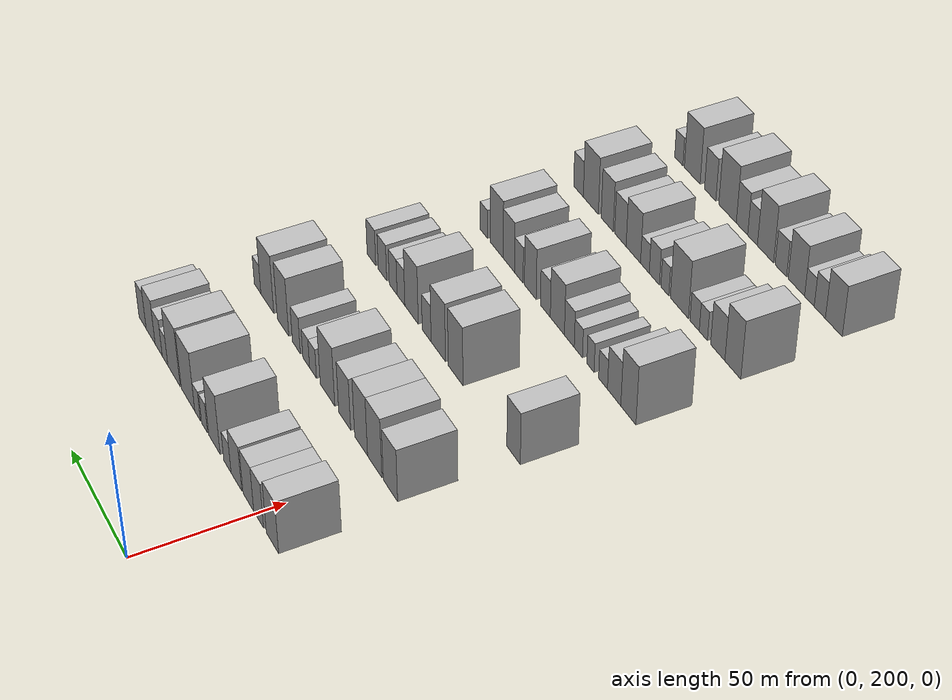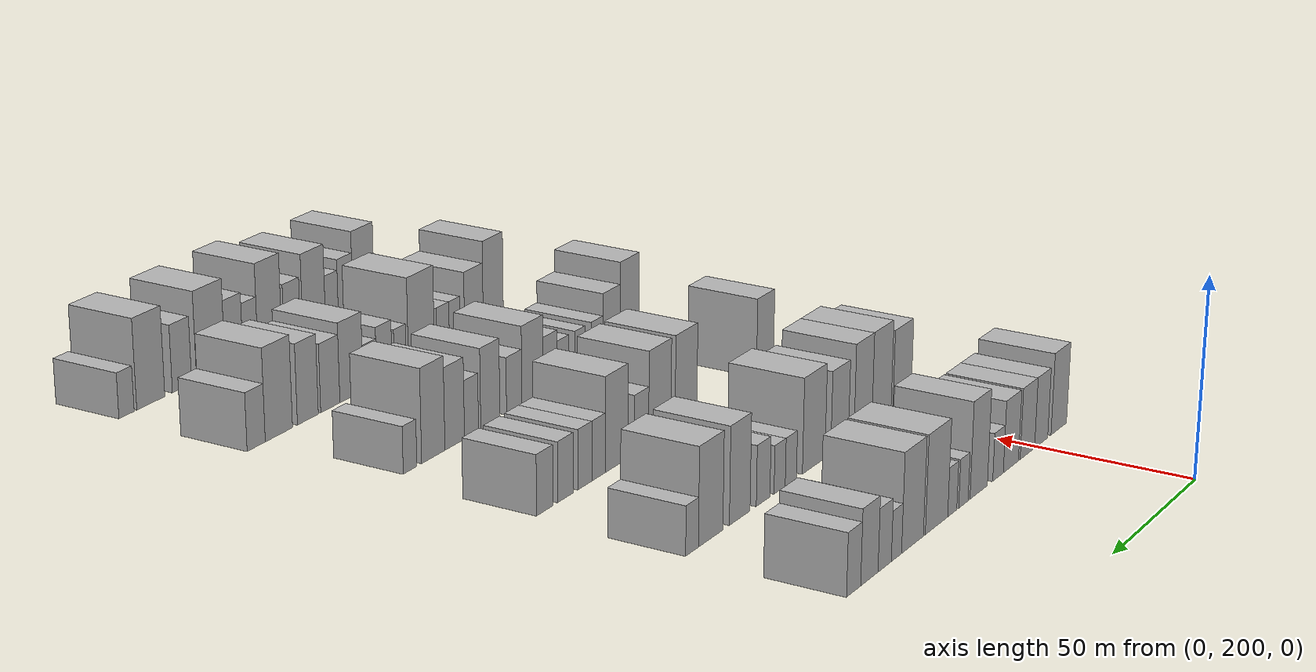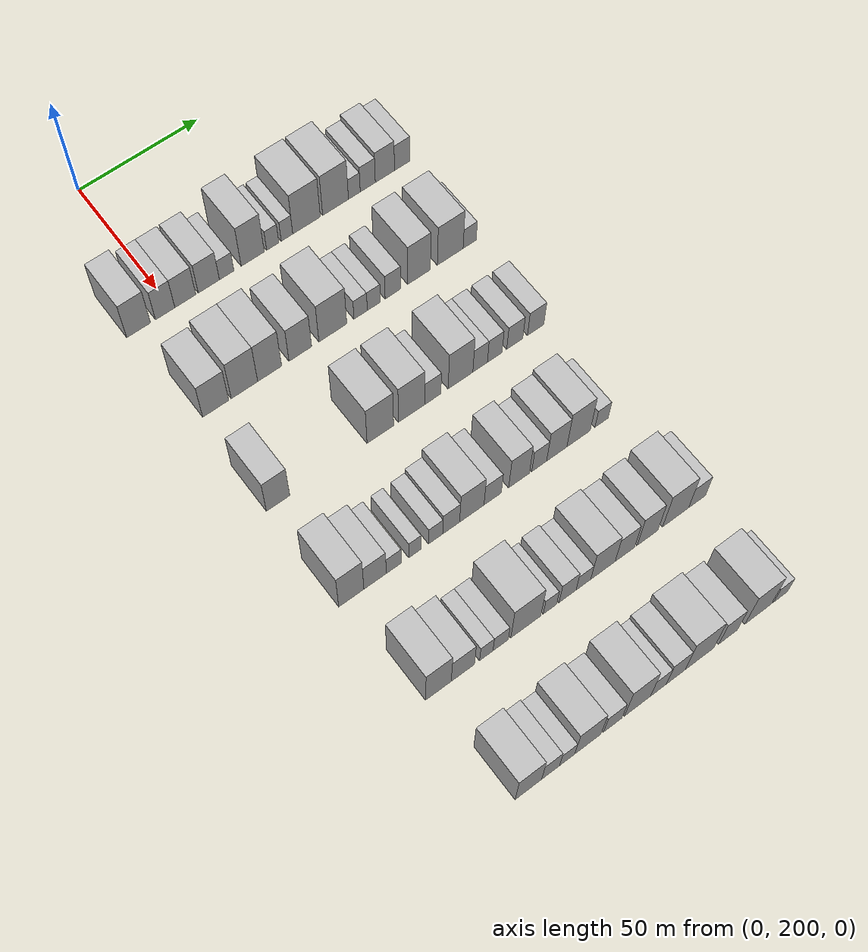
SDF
<sdf version="1.6">
 <world name="default">
  <model name="building_92">
   <static>1</static>
   <pose>50.0000 186.4807 0 0.000000 0.000000 0.000000</pose>
   <link name="link">
    <pose>0 0 10.50 0 0 0</pose>
    <collision name="collision"><geometry><box><size>20.0000 9.4979 21.0000</size></box></geometry></collision>
    <visual name="visual">
     <cast_shadows>0</cast_shadows>
     <geometry><box><size>20.0000 9.4979 21.0000</size></box></geometry>
     <material>
      <script>
       <uri>model://HANNAS_wall/materials/scripts</uri>
       <uri>model://HANNAS_wall/materials/textures</uri>
       <name>vrc/HANNAS_wall</name>
      </script>
     </material>
    </visual>
   </link>
  </model>
  <model name="building_93">
   <static>1</static>
   <pose>50.0000 197.1369 0 0.000000 0.000000 0.000000</pose>
   <link name="link">
    <pose>0 0 9.00 0 0 0</pose>
    <collision name="collision"><geometry><box><size>20.0000 7.8145 18.0000</size></box></geometry></collision>
    <visual name="visual">
     <cast_shadows>0</cast_shadows>
     <geometry><box><size>20.0000 7.8145 18.0000</size></box></geometry>
     <material>
      <script>
       <uri>model://HANNAS_wall/materials/scripts</uri>
       <uri>model://HANNAS_wall/materials/textures</uri>
       <name>vrc/HANNAS_wall</name>
      </script>
     </material>
    </visual>
   </link>
  </model>
  <model name="building_94">
   <static>1</static>
   <pose>50.0000 205.2995 0 0.000000 0.000000 0.000000</pose>
   <link name="link">
    <pose>0 0 9.00 0 0 0</pose>
    <collision name="collision"><geometry><box><size>20.0000 8.5106 18.0000</size></box></geometry></collision>
    <visual name="visual">
     <cast_shadows>0</cast_shadows>
     <geometry><box><size>20.0000 8.5106 18.0000</size></box></geometry>
     <material>
      <script>
       <uri>model://HANNAS_wall/materials/scripts</uri>
       <uri>model://HANNAS_wall/materials/textures</uri>
       <name>vrc/HANNAS_wall</name>
      </script>
     </material>
    </visual>
   </link>
  </model>
  <model name="building_95">
   <static>1</static>
   <pose>50.0000 214.9001 0 0.000000 0.000000 0.000000</pose>
   <link name="link">
    <pose>0 0 9.00 0 0 0</pose>
    <collision name="collision"><geometry><box><size>20.0000 8.6907 18.0000</size></box></geometry></collision>
    <visual name="visual">
     <cast_shadows>0</cast_shadows>
     <geometry><box><size>20.0000 8.6907 18.0000</size></box></geometry>
     <material>
      <script>
       <uri>model://HANNAS_wall/materials/scripts</uri>
       <uri>model://HANNAS_wall/materials/textures</uri>
       <name>vrc/HANNAS_wall</name>
      </script>
     </material>
    </visual>
   </link>
  </model>
  <model name="building_96">
   <static>1</static>
   <pose>50.0000 222.2431 0 0.000000 0.000000 0.000000</pose>
   <link name="link">
    <pose>0 0 6.00 0 0 0</pose>
    <collision name="collision"><geometry><box><size>20.0000 5.9953 12.0000</size></box></geometry></collision>
    <visual name="visual">
     <cast_shadows>0</cast_shadows>
     <geometry><box><size>20.0000 5.9953 12.0000</size></box></geometry>
     <material>
      <script>
       <uri>model://HANNAS_wall/materials/scripts</uri>
       <uri>model://HANNAS_wall/materials/textures</uri>
       <name>vrc/HANNAS_wall</name>
      </script>
     </material>
    </visual>
   </link>
  </model>
  <model name="building_97">
   <static>1</static>
   <pose>50.0000 233.0415 0 0.000000 0.000000 0.000000</pose>
   <link name="link">
    <pose>0 0 12.00 0 0 0</pose>
    <collision name="collision"><geometry><box><size>20.0000 9.6014 24.0000</size></box></geometry></collision>
    <visual name="visual">
     <cast_shadows>0</cast_shadows>
     <geometry><box><size>20.0000 9.6014 24.0000</size></box></geometry>
     <material>
      <script>
       <uri>model://HANNAS_wall/materials/scripts</uri>
       <uri>model://HANNAS_wall/materials/textures</uri>
       <name>vrc/HANNAS_wall</name>
      </script>
     </material>
    </visual>
   </link>
  </model>
  <model name="building_98">
   <static>1</static>
   <pose>50.0000 241.4046 0 0.000000 0.000000 0.000000</pose>
   <link name="link">
    <pose>0 0 6.00 0 0 0</pose>
    <collision name="collision"><geometry><box><size>20.0000 5.1250 12.0000</size></box></geometry></collision>
    <visual name="visual">
     <cast_shadows>0</cast_shadows>
     <geometry><box><size>20.0000 5.1250 12.0000</size></box></geometry>
     <material>
      <script>
       <uri>model://HANNAS_wall/materials/scripts</uri>
       <uri>model://HANNAS_wall/materials/textures</uri>
       <name>vrc/HANNAS_wall</name>
      </script>
     </material>
    </visual>
   </link>
  </model>
  <model name="building_99">
   <static>1</static>
   <pose>50.0000 247.4017 0 0.000000 0.000000 0.000000</pose>
   <link name="link">
    <pose>0 0 6.00 0 0 0</pose>
    <collision name="collision"><geometry><box><size>20.0000 4.8691 12.0000</size></box></geometry></collision>
    <visual name="visual">
     <cast_shadows>0</cast_shadows>
     <geometry><box><size>20.0000 4.8691 12.0000</size></box></geometry>
     <material>
      <script>
       <uri>model://HANNAS_wall/materials/scripts</uri>
       <uri>model://HANNAS_wall/materials/textures</uri>
       <name>vrc/HANNAS_wall</name>
      </script>
     </material>
    </visual>
   </link>
  </model>
  <model name="building_100">
   <static>1</static>
   <pose>50.0000 255.6946 0 0.000000 0.000000 0.000000</pose>
   <link name="link">
    <pose>0 0 12.00 0 0 0</pose>
    <collision name="collision"><geometry><box><size>20.0000 11.7168 24.0000</size></box></geometry></collision>
    <visual name="visual">
     <cast_shadows>0</cast_shadows>
     <geometry><box><size>20.0000 11.7168 24.0000</size></box></geometry>
     <material>
      <script>
       <uri>model://HANNAS_wall/materials/scripts</uri>
       <uri>model://HANNAS_wall/materials/textures</uri>
       <name>vrc/HANNAS_wall</name>
      </script>
     </material>
    </visual>
   </link>
  </model>
  <model name="building_101">
   <static>1</static>
   <pose>50.0000 268.1059 0 0.000000 0.000000 0.000000</pose>
   <link name="link">
    <pose>0 0 12.00 0 0 0</pose>
    <collision name="collision"><geometry><box><size>20.0000 11.1059 24.0000</size></box></geometry></collision>
    <visual name="visual">
     <cast_shadows>0</cast_shadows>
     <geometry><box><size>20.0000 11.1059 24.0000</size></box></geometry>
     <material>
      <script>
       <uri>model://HANNAS_wall/materials/scripts</uri>
       <uri>model://HANNAS_wall/materials/textures</uri>
       <name>vrc/HANNAS_wall</name>
      </script>
     </material>
    </visual>
   </link>
  </model>
  <model name="building_102">
   <static>1</static>
   <pose>50.0000 276.2092 0 0.000000 0.000000 0.000000</pose>
   <link name="link">
    <pose>0 0 6.00 0 0 0</pose>
    <collision name="collision"><geometry><box><size>20.0000 5.1007 12.0000</size></box></geometry></collision>
    <visual name="visual">
     <cast_shadows>0</cast_shadows>
     <geometry><box><size>20.0000 5.1007 12.0000</size></box></geometry>
     <material>
      <script>
       <uri>model://HANNAS_wall/materials/scripts</uri>
       <uri>model://HANNAS_wall/materials/textures</uri>
       <name>vrc/HANNAS_wall</name>
      </script>
     </material>
    </visual>
   </link>
  </model>
  <model name="building_103">
   <static>1</static>
   <pose>50.0000 282.0376 0 0.000000 0.000000 0.000000</pose>
   <link name="link">
    <pose>0 0 7.50 0 0 0</pose>
    <collision name="collision"><geometry><box><size>20.0000 6.5561 15.0000</size></box></geometry></collision>
    <visual name="visual">
     <cast_shadows>0</cast_shadows>
     <geometry><box><size>20.0000 6.5561 15.0000</size></box></geometry>
     <material>
      <script>
       <uri>model://HANNAS_wall/materials/scripts</uri>
       <uri>model://HANNAS_wall/materials/textures</uri>
       <name>vrc/HANNAS_wall</name>
      </script>
     </material>
    </visual>
   </link>
  </model>
  <model name="building_104">
   <static>1</static>
   <pose>50.0000 289.5081 0 0.000000 0.000000 0.000000</pose>
   <link name="link">
    <pose>0 0 9.00 0 0 0</pose>
    <collision name="collision"><geometry><box><size>20.0000 8.3850 18.0000</size></box></geometry></collision>
    <visual name="visual">
     <cast_shadows>0</cast_shadows>
     <geometry><box><size>20.0000 8.3850 18.0000</size></box></geometry>
     <material>
      <script>
       <uri>model://HANNAS_wall/materials/scripts</uri>
       <uri>model://HANNAS_wall/materials/textures</uri>
       <name>vrc/HANNAS_wall</name>
      </script>
     </material>
    </visual>
   </link>
  </model>
  <model name="building_105">
   <static>1</static>
   <pose>50.0000 297.0561 0 0.000000 0.000000 0.000000</pose>
   <link name="link">
    <pose>0 0 7.50 0 0 0</pose>
    <collision name="collision"><geometry><box><size>20.0000 6.7108 15.0000</size></box></geometry></collision>
    <visual name="visual">
     <cast_shadows>0</cast_shadows>
     <geometry><box><size>20.0000 6.7108 15.0000</size></box></geometry>
     <material>
      <script>
       <uri>model://HANNAS_wall/materials/scripts</uri>
       <uri>model://HANNAS_wall/materials/textures</uri>
       <name>vrc/HANNAS_wall</name>
      </script>
     </material>
    </visual>
   </link>
  </model>
  <model name="building_231">
   <static>1</static>
   <pose>90.0000 190.8780 0 0.000000 0.000000 0.000000</pose>
   <link name="link">
    <pose>0 0 10.50 0 0 0</pose>
    <collision name="collision"><geometry><box><size>20.0000 10.3225 21.0000</size></box></geometry></collision>
    <visual name="visual">
     <cast_shadows>0</cast_shadows>
     <geometry><box><size>20.0000 10.3225 21.0000</size></box></geometry>
     <material>
      <script>
       <uri>model://HANNAS_wall/materials/scripts</uri>
       <uri>model://HANNAS_wall/materials/textures</uri>
       <name>vrc/HANNAS_wall</name>
      </script>
     </material>
    </visual>
   </link>
  </model>
  <model name="building_232">
   <static>1</static>
   <pose>90.0000 202.3328 0 0.000000 0.000000 0.000000</pose>
   <link name="link">
    <pose>0 0 12.00 0 0 0</pose>
    <collision name="collision"><geometry><box><size>20.0000 10.5871 24.0000</size></box></geometry></collision>
    <visual name="visual">
     <cast_shadows>0</cast_shadows>
     <geometry><box><size>20.0000 10.5871 24.0000</size></box></geometry>
     <material>
      <script>
       <uri>model://HANNAS_wall/materials/scripts</uri>
       <uri>model://HANNAS_wall/materials/textures</uri>
       <name>vrc/HANNAS_wall</name>
      </script>
     </material>
    </visual>
   </link>
  </model>
  <model name="building_233">
   <static>1</static>
   <pose>90.0000 212.4671 0 0.000000 0.000000 0.000000</pose>
   <link name="link">
    <pose>0 0 12.00 0 0 0</pose>
    <collision name="collision"><geometry><box><size>20.0000 9.6815 24.0000</size></box></geometry></collision>
    <visual name="visual">
     <cast_shadows>0</cast_shadows>
     <geometry><box><size>20.0000 9.6815 24.0000</size></box></geometry>
     <material>
      <script>
       <uri>model://HANNAS_wall/materials/scripts</uri>
       <uri>model://HANNAS_wall/materials/textures</uri>
       <name>vrc/HANNAS_wall</name>
      </script>
     </material>
    </visual>
   </link>
  </model>
  <model name="building_234">
   <static>1</static>
   <pose>90.0000 224.9307 0 0.000000 0.000000 0.000000</pose>
   <link name="link">
    <pose>0 0 10.50 0 0 0</pose>
    <collision name="collision"><geometry><box><size>20.0000 9.2458 21.0000</size></box></geometry></collision>
    <visual name="visual">
     <cast_shadows>0</cast_shadows>
     <geometry><box><size>20.0000 9.2458 21.0000</size></box></geometry>
     <material>
      <script>
       <uri>model://HANNAS_wall/materials/scripts</uri>
       <uri>model://HANNAS_wall/materials/textures</uri>
       <name>vrc/HANNAS_wall</name>
      </script>
     </material>
    </visual>
   </link>
  </model>
  <model name="building_235">
   <static>1</static>
   <pose>90.0000 238.3141 0 0.000000 0.000000 0.000000</pose>
   <link name="link">
    <pose>0 0 12.00 0 0 0</pose>
    <collision name="collision"><geometry><box><size>20.0000 11.5210 24.0000</size></box></geometry></collision>
    <visual name="visual">
     <cast_shadows>0</cast_shadows>
     <geometry><box><size>20.0000 11.5210 24.0000</size></box></geometry>
     <material>
      <script>
       <uri>model://HANNAS_wall/materials/scripts</uri>
       <uri>model://HANNAS_wall/materials/textures</uri>
       <name>vrc/HANNAS_wall</name>
      </script>
     </material>
    </visual>
   </link>
  </model>
  <model name="building_236">
   <static>1</static>
   <pose>90.0000 249.8631 0 0.000000 0.000000 0.000000</pose>
   <link name="link">
    <pose>0 0 6.00 0 0 0</pose>
    <collision name="collision"><geometry><box><size>20.0000 5.5769 12.0000</size></box></geometry></collision>
    <visual name="visual">
     <cast_shadows>0</cast_shadows>
     <geometry><box><size>20.0000 5.5769 12.0000</size></box></geometry>
     <material>
      <script>
       <uri>model://HANNAS_wall/materials/scripts</uri>
       <uri>model://HANNAS_wall/materials/textures</uri>
       <name>vrc/HANNAS_wall</name>
      </script>
     </material>
    </visual>
   </link>
  </model>
  <model name="building_237">
   <static>1</static>
   <pose>90.0000 255.3997 0 0.000000 0.000000 0.000000</pose>
   <link name="link">
    <pose>0 0 6.00 0 0 0</pose>
    <collision name="collision"><geometry><box><size>20.0000 5.4964 12.0000</size></box></geometry></collision>
    <visual name="visual">
     <cast_shadows>0</cast_shadows>
     <geometry><box><size>20.0000 5.4964 12.0000</size></box></geometry>
     <material>
      <script>
       <uri>model://HANNAS_wall/materials/scripts</uri>
       <uri>model://HANNAS_wall/materials/textures</uri>
       <name>vrc/HANNAS_wall</name>
      </script>
     </material>
    </visual>
   </link>
  </model>
  <model name="building_238">
   <static>1</static>
   <pose>90.0000 263.4422 0 0.000000 0.000000 0.000000</pose>
   <link name="link">
    <pose>0 0 7.50 0 0 0</pose>
    <collision name="collision"><geometry><box><size>20.0000 6.5884 15.0000</size></box></geometry></collision>
    <visual name="visual">
     <cast_shadows>0</cast_shadows>
     <geometry><box><size>20.0000 6.5884 15.0000</size></box></geometry>
     <material>
      <script>
       <uri>model://HANNAS_wall/materials/scripts</uri>
       <uri>model://HANNAS_wall/materials/textures</uri>
       <name>vrc/HANNAS_wall</name>
      </script>
     </material>
    </visual>
   </link>
  </model>
  <model name="building_239">
   <static>1</static>
   <pose>90.0000 274.5792 0 0.000000 0.000000 0.000000</pose>
   <link name="link">
    <pose>0 0 12.00 0 0 0</pose>
    <collision name="collision"><geometry><box><size>20.0000 9.6856 24.0000</size></box></geometry></collision>
    <visual name="visual">
     <cast_shadows>0</cast_shadows>
     <geometry><box><size>20.0000 9.6856 24.0000</size></box></geometry>
     <material>
      <script>
       <uri>model://HANNAS_wall/materials/scripts</uri>
       <uri>model://HANNAS_wall/materials/textures</uri>
       <name>vrc/HANNAS_wall</name>
      </script>
     </material>
    </visual>
   </link>
  </model>
  <model name="building_240">
   <static>1</static>
   <pose>90.0000 288.0007 0 0.000000 0.000000 0.000000</pose>
   <link name="link">
    <pose>0 0 12.00 0 0 0</pose>
    <collision name="collision"><geometry><box><size>20.0000 11.1575 24.0000</size></box></geometry></collision>
    <visual name="visual">
     <cast_shadows>0</cast_shadows>
     <geometry><box><size>20.0000 11.1575 24.0000</size></box></geometry>
     <material>
      <script>
       <uri>model://HANNAS_wall/materials/scripts</uri>
       <uri>model://HANNAS_wall/materials/textures</uri>
       <name>vrc/HANNAS_wall</name>
      </script>
     </material>
    </visual>
   </link>
  </model>
  <model name="building_241">
   <static>1</static>
   <pose>90.0000 296.4342 0 0.000000 0.000000 0.000000</pose>
   <link name="link">
    <pose>0 0 6.00 0 0 0</pose>
    <collision name="collision"><geometry><box><size>20.0000 5.7094 12.0000</size></box></geometry></collision>
    <visual name="visual">
     <cast_shadows>0</cast_shadows>
     <geometry><box><size>20.0000 5.7094 12.0000</size></box></geometry>
     <material>
      <script>
       <uri>model://HANNAS_wall/materials/scripts</uri>
       <uri>model://HANNAS_wall/materials/textures</uri>
       <name>vrc/HANNAS_wall</name>
      </script>
     </material>
    </visual>
   </link>
  </model>
  <model name="building_360">
   <static>1</static>
   <pose>130.0000 188.0913 0 0.000000 0.000000 0.000000</pose>
   <link name="link">
    <pose>0 0 10.50 0 0 0</pose>
    <collision name="collision"><geometry><box><size>20.0000 9.1179 21.0000</size></box></geometry></collision>
    <visual name="visual">
     <cast_shadows>0</cast_shadows>
     <geometry><box><size>20.0000 9.1179 21.0000</size></box></geometry>
     <material>
      <script>
       <uri>model://HANNAS_wall/materials/scripts</uri>
       <uri>model://HANNAS_wall/materials/textures</uri>
       <name>vrc/HANNAS_wall</name>
      </script>
     </material>
    </visual>
   </link>
  </model>
  <model name="building_361">
   <static>1</static>
   <pose>130.0000 228.7463 0 0.000000 0.000000 0.000000</pose>
   <link name="link">
    <pose>0 0 12.00 0 0 0</pose>
    <collision name="collision"><geometry><box><size>20.0000 10.7308 24.0000</size></box></geometry></collision>
    <visual name="visual">
     <cast_shadows>0</cast_shadows>
     <geometry><box><size>20.0000 10.7308 24.0000</size></box></geometry>
     <material>
      <script>
       <uri>model://HANNAS_wall/materials/scripts</uri>
       <uri>model://HANNAS_wall/materials/textures</uri>
       <name>vrc/HANNAS_wall</name>
      </script>
     </material>
    </visual>
   </link>
  </model>
  <model name="building_362">
   <static>1</static>
   <pose>130.0000 241.4759 0 0.000000 0.000000 0.000000</pose>
   <link name="link">
    <pose>0 0 12.00 0 0 0</pose>
    <collision name="collision"><geometry><box><size>20.0000 10.7284 24.0000</size></box></geometry></collision>
    <visual name="visual">
     <cast_shadows>0</cast_shadows>
     <geometry><box><size>20.0000 10.7284 24.0000</size></box></geometry>
     <material>
      <script>
       <uri>model://HANNAS_wall/materials/scripts</uri>
       <uri>model://HANNAS_wall/materials/textures</uri>
       <name>vrc/HANNAS_wall</name>
      </script>
     </material>
    </visual>
   </link>
  </model>
  <model name="building_363">
   <static>1</static>
   <pose>130.0000 250.2085 0 0.000000 0.000000 0.000000</pose>
   <link name="link">
    <pose>0 0 7.50 0 0 0</pose>
    <collision name="collision"><geometry><box><size>20.0000 6.7366 15.0000</size></box></geometry></collision>
    <visual name="visual">
     <cast_shadows>0</cast_shadows>
     <geometry><box><size>20.0000 6.7366 15.0000</size></box></geometry>
     <material>
      <script>
       <uri>model://HANNAS_wall/materials/scripts</uri>
       <uri>model://HANNAS_wall/materials/textures</uri>
       <name>vrc/HANNAS_wall</name>
      </script>
     </material>
    </visual>
   </link>
  </model>
  <model name="building_364">
   <static>1</static>
   <pose>130.0000 261.7545 0 0.000000 0.000000 0.000000</pose>
   <link name="link">
    <pose>0 0 12.00 0 0 0</pose>
    <collision name="collision"><geometry><box><size>20.0000 10.3554 24.0000</size></box></geometry></collision>
    <visual name="visual">
     <cast_shadows>0</cast_shadows>
     <geometry><box><size>20.0000 10.3554 24.0000</size></box></geometry>
     <material>
      <script>
       <uri>model://HANNAS_wall/materials/scripts</uri>
       <uri>model://HANNAS_wall/materials/textures</uri>
       <name>vrc/HANNAS_wall</name>
      </script>
     </material>
    </visual>
   </link>
  </model>
  <model name="building_365">
   <static>1</static>
   <pose>130.0000 269.9953 0 0.000000 0.000000 0.000000</pose>
   <link name="link">
    <pose>0 0 7.50 0 0 0</pose>
    <collision name="collision"><geometry><box><size>20.0000 6.1261 15.0000</size></box></geometry></collision>
    <visual name="visual">
     <cast_shadows>0</cast_shadows>
     <geometry><box><size>20.0000 6.1261 15.0000</size></box></geometry>
     <material>
      <script>
       <uri>model://HANNAS_wall/materials/scripts</uri>
       <uri>model://HANNAS_wall/materials/textures</uri>
       <name>vrc/HANNAS_wall</name>
      </script>
     </material>
    </visual>
   </link>
  </model>
  <model name="building_366">
   <static>1</static>
   <pose>130.0000 276.1581 0 0.000000 0.000000 0.000000</pose>
   <link name="link">
    <pose>0 0 7.50 0 0 0</pose>
    <collision name="collision"><geometry><box><size>20.0000 6.1996 15.0000</size></box></geometry></collision>
    <visual name="visual">
     <cast_shadows>0</cast_shadows>
     <geometry><box><size>20.0000 6.1996 15.0000</size></box></geometry>
     <material>
      <script>
       <uri>model://HANNAS_wall/materials/scripts</uri>
       <uri>model://HANNAS_wall/materials/textures</uri>
       <name>vrc/HANNAS_wall</name>
      </script>
     </material>
    </visual>
   </link>
  </model>
  <model name="building_367">
   <static>1</static>
   <pose>130.0000 284.6911 0 0.000000 0.000000 0.000000</pose>
   <link name="link">
    <pose>0 0 7.50 0 0 0</pose>
    <collision name="collision"><geometry><box><size>20.0000 6.8664 15.0000</size></box></geometry></collision>
    <visual name="visual">
     <cast_shadows>0</cast_shadows>
     <geometry><box><size>20.0000 6.8664 15.0000</size></box></geometry>
     <material>
      <script>
       <uri>model://HANNAS_wall/materials/scripts</uri>
       <uri>model://HANNAS_wall/materials/textures</uri>
       <name>vrc/HANNAS_wall</name>
      </script>
     </material>
    </visual>
   </link>
  </model>
  <model name="building_368">
   <static>1</static>
   <pose>130.0000 293.6429 0 0.000000 0.000000 0.000000</pose>
   <link name="link">
    <pose>0 0 7.50 0 0 0</pose>
    <collision name="collision"><geometry><box><size>20.0000 7.0372 15.0000</size></box></geometry></collision>
    <visual name="visual">
     <cast_shadows>0</cast_shadows>
     <geometry><box><size>20.0000 7.0372 15.0000</size></box></geometry>
     <material>
      <script>
       <uri>model://HANNAS_wall/materials/scripts</uri>
       <uri>model://HANNAS_wall/materials/textures</uri>
       <name>vrc/HANNAS_wall</name>
      </script>
     </material>
    </visual>
   </link>
  </model>
  <model name="building_481">
   <static>1</static>
   <pose>170.0000 188.1336 0 0.000000 0.000000 0.000000</pose>
   <link name="link">
    <pose>0 0 12.00 0 0 0</pose>
    <collision name="collision"><geometry><box><size>20.0000 9.6899 24.0000</size></box></geometry></collision>
    <visual name="visual">
     <cast_shadows>0</cast_shadows>
     <geometry><box><size>20.0000 9.6899 24.0000</size></box></geometry>
     <material>
      <script>
       <uri>model://HANNAS_wall/materials/scripts</uri>
       <uri>model://HANNAS_wall/materials/textures</uri>
       <name>vrc/HANNAS_wall</name>
      </script>
     </material>
    </visual>
   </link>
  </model>
  <model name="building_482">
   <static>1</static>
   <pose>170.0000 197.3271 0 0.000000 0.000000 0.000000</pose>
   <link name="link">
    <pose>0 0 9.00 0 0 0</pose>
    <collision name="collision"><geometry><box><size>20.0000 8.6972 18.0000</size></box></geometry></collision>
    <visual name="visual">
     <cast_shadows>0</cast_shadows>
     <geometry><box><size>20.0000 8.6972 18.0000</size></box></geometry>
     <material>
      <script>
       <uri>model://HANNAS_wall/materials/scripts</uri>
       <uri>model://HANNAS_wall/materials/textures</uri>
       <name>vrc/HANNAS_wall</name>
      </script>
     </material>
    </visual>
   </link>
  </model>
  <model name="building_483">
   <static>1</static>
   <pose>170.0000 204.5987 0 0.000000 0.000000 0.000000</pose>
   <link name="link">
    <pose>0 0 6.00 0 0 0</pose>
    <collision name="collision"><geometry><box><size>20.0000 5.8460 12.0000</size></box></geometry></collision>
    <visual name="visual">
     <cast_shadows>0</cast_shadows>
     <geometry><box><size>20.0000 5.8460 12.0000</size></box></geometry>
     <material>
      <script>
       <uri>model://HANNAS_wall/materials/scripts</uri>
       <uri>model://HANNAS_wall/materials/textures</uri>
       <name>vrc/HANNAS_wall</name>
      </script>
     </material>
    </visual>
   </link>
  </model>
  <model name="building_484">
   <static>1</static>
   <pose>170.0000 212.9225 0 0.000000 0.000000 0.000000</pose>
   <link name="link">
    <pose>0 0 6.00 0 0 0</pose>
    <collision name="collision"><geometry><box><size>20.0000 4.8016 12.0000</size></box></geometry></collision>
    <visual name="visual">
     <cast_shadows>0</cast_shadows>
     <geometry><box><size>20.0000 4.8016 12.0000</size></box></geometry>
     <material>
      <script>
       <uri>model://HANNAS_wall/materials/scripts</uri>
       <uri>model://HANNAS_wall/materials/textures</uri>
       <name>vrc/HANNAS_wall</name>
      </script>
     </material>
    </visual>
   </link>
  </model>
  <model name="building_485">
   <static>1</static>
   <pose>170.0000 221.1230 0 0.000000 0.000000 0.000000</pose>
   <link name="link">
    <pose>0 0 6.00 0 0 0</pose>
    <collision name="collision"><geometry><box><size>20.0000 5.5994 12.0000</size></box></geometry></collision>
    <visual name="visual">
     <cast_shadows>0</cast_shadows>
     <geometry><box><size>20.0000 5.5994 12.0000</size></box></geometry>
     <material>
      <script>
       <uri>model://HANNAS_wall/materials/scripts</uri>
       <uri>model://HANNAS_wall/materials/textures</uri>
       <name>vrc/HANNAS_wall</name>
      </script>
     </material>
    </visual>
   </link>
  </model>
  <model name="building_486">
   <static>1</static>
   <pose>170.0000 227.2999 0 0.000000 0.000000 0.000000</pose>
   <link name="link">
    <pose>0 0 7.50 0 0 0</pose>
    <collision name="collision"><geometry><box><size>20.0000 6.7544 15.0000</size></box></geometry></collision>
    <visual name="visual">
     <cast_shadows>0</cast_shadows>
     <geometry><box><size>20.0000 6.7544 15.0000</size></box></geometry>
     <material>
      <script>
       <uri>model://HANNAS_wall/materials/scripts</uri>
       <uri>model://HANNAS_wall/materials/textures</uri>
       <name>vrc/HANNAS_wall</name>
      </script>
     </material>
    </visual>
   </link>
  </model>
  <model name="building_487">
   <static>1</static>
   <pose>170.0000 235.6027 0 0.000000 0.000000 0.000000</pose>
   <link name="link">
    <pose>0 0 10.50 0 0 0</pose>
    <collision name="collision"><geometry><box><size>20.0000 9.8512 21.0000</size></box></geometry></collision>
    <visual name="visual">
     <cast_shadows>0</cast_shadows>
     <geometry><box><size>20.0000 9.8512 21.0000</size></box></geometry>
     <material>
      <script>
       <uri>model://HANNAS_wall/materials/scripts</uri>
       <uri>model://HANNAS_wall/materials/textures</uri>
       <name>vrc/HANNAS_wall</name>
      </script>
     </material>
    </visual>
   </link>
  </model>
  <model name="building_488">
   <static>1</static>
   <pose>170.0000 244.0478 0 0.000000 0.000000 0.000000</pose>
   <link name="link">
    <pose>0 0 7.50 0 0 0</pose>
    <collision name="collision"><geometry><box><size>20.0000 7.0389 15.0000</size></box></geometry></collision>
    <visual name="visual">
     <cast_shadows>0</cast_shadows>
     <geometry><box><size>20.0000 7.0389 15.0000</size></box></geometry>
     <material>
      <script>
       <uri>model://HANNAS_wall/materials/scripts</uri>
       <uri>model://HANNAS_wall/materials/textures</uri>
       <name>vrc/HANNAS_wall</name>
      </script>
     </material>
    </visual>
   </link>
  </model>
  <model name="building_489">
   <static>1</static>
   <pose>170.0000 254.8278 0 0.000000 0.000000 0.000000</pose>
   <link name="link">
    <pose>0 0 10.50 0 0 0</pose>
    <collision name="collision"><geometry><box><size>20.0000 8.5212 21.0000</size></box></geometry></collision>
    <visual name="visual">
     <cast_shadows>0</cast_shadows>
     <geometry><box><size>20.0000 8.5212 21.0000</size></box></geometry>
     <material>
      <script>
       <uri>model://HANNAS_wall/materials/scripts</uri>
       <uri>model://HANNAS_wall/materials/textures</uri>
       <name>vrc/HANNAS_wall</name>
      </script>
     </material>
    </visual>
   </link>
  </model>
  <model name="building_490">
   <static>1</static>
   <pose>170.0000 263.1629 0 0.000000 0.000000 0.000000</pose>
   <link name="link">
    <pose>0 0 7.50 0 0 0</pose>
    <collision name="collision"><geometry><box><size>20.0000 6.1490 15.0000</size></box></geometry></collision>
    <visual name="visual">
     <cast_shadows>0</cast_shadows>
     <geometry><box><size>20.0000 6.1490 15.0000</size></box></geometry>
     <material>
      <script>
       <uri>model://HANNAS_wall/materials/scripts</uri>
       <uri>model://HANNAS_wall/materials/textures</uri>
       <name>vrc/HANNAS_wall</name>
      </script>
     </material>
    </visual>
   </link>
  </model>
  <model name="building_491">
   <static>1</static>
   <pose>170.0000 270.4607 0 0.000000 0.000000 0.000000</pose>
   <link name="link">
    <pose>0 0 10.50 0 0 0</pose>
    <collision name="collision"><geometry><box><size>20.0000 8.4465 21.0000</size></box></geometry></collision>
    <visual name="visual">
     <cast_shadows>0</cast_shadows>
     <geometry><box><size>20.0000 8.4465 21.0000</size></box></geometry>
     <material>
      <script>
       <uri>model://HANNAS_wall/materials/scripts</uri>
       <uri>model://HANNAS_wall/materials/textures</uri>
       <name>vrc/HANNAS_wall</name>
      </script>
     </material>
    </visual>
   </link>
  </model>
  <model name="building_492">
   <static>1</static>
   <pose>170.0000 279.6167 0 0.000000 0.000000 0.000000</pose>
   <link name="link">
    <pose>0 0 12.00 0 0 0</pose>
    <collision name="collision"><geometry><box><size>20.0000 9.8657 24.0000</size></box></geometry></collision>
    <visual name="visual">
     <cast_shadows>0</cast_shadows>
     <geometry><box><size>20.0000 9.8657 24.0000</size></box></geometry>
     <material>
      <script>
       <uri>model://HANNAS_wall/materials/scripts</uri>
       <uri>model://HANNAS_wall/materials/textures</uri>
       <name>vrc/HANNAS_wall</name>
      </script>
     </material>
    </visual>
   </link>
  </model>
  <model name="building_493">
   <static>1</static>
   <pose>170.0000 289.3597 0 0.000000 0.000000 0.000000</pose>
   <link name="link">
    <pose>0 0 6.00 0 0 0</pose>
    <collision name="collision"><geometry><box><size>20.0000 5.6201 12.0000</size></box></geometry></collision>
    <visual name="visual">
     <cast_shadows>0</cast_shadows>
     <geometry><box><size>20.0000 5.6201 12.0000</size></box></geometry>
     <material>
      <script>
       <uri>model://HANNAS_wall/materials/scripts</uri>
       <uri>model://HANNAS_wall/materials/textures</uri>
       <name>vrc/HANNAS_wall</name>
      </script>
     </material>
    </visual>
   </link>
  </model>
  <model name="building_608">
   <static>1</static>
   <pose>210.0000 191.9048 0 0.000000 0.000000 0.000000</pose>
   <link name="link">
    <pose>0 0 12.00 0 0 0</pose>
    <collision name="collision"><geometry><box><size>20.0000 9.8063 24.0000</size></box></geometry></collision>
    <visual name="visual">
     <cast_shadows>0</cast_shadows>
     <geometry><box><size>20.0000 9.8063 24.0000</size></box></geometry>
     <material>
      <script>
       <uri>model://HANNAS_wall/materials/scripts</uri>
       <uri>model://HANNAS_wall/materials/textures</uri>
       <name>vrc/HANNAS_wall</name>
      </script>
     </material>
    </visual>
   </link>
  </model>
  <model name="building_609">
   <static>1</static>
   <pose>210.0000 201.2851 0 0.000000 0.000000 0.000000</pose>
   <link name="link">
    <pose>0 0 9.00 0 0 0</pose>
    <collision name="collision"><geometry><box><size>20.0000 8.9543 18.0000</size></box></geometry></collision>
    <visual name="visual">
     <cast_shadows>0</cast_shadows>
     <geometry><box><size>20.0000 8.9543 18.0000</size></box></geometry>
     <material>
      <script>
       <uri>model://HANNAS_wall/materials/scripts</uri>
       <uri>model://HANNAS_wall/materials/textures</uri>
       <name>vrc/HANNAS_wall</name>
      </script>
     </material>
    </visual>
   </link>
  </model>
  <model name="building_610">
   <static>1</static>
   <pose>210.0000 210.3533 0 0.000000 0.000000 0.000000</pose>
   <link name="link">
    <pose>0 0 6.00 0 0 0</pose>
    <collision name="collision"><geometry><box><size>20.0000 5.1822 12.0000</size></box></geometry></collision>
    <visual name="visual">
     <cast_shadows>0</cast_shadows>
     <geometry><box><size>20.0000 5.1822 12.0000</size></box></geometry>
     <material>
      <script>
       <uri>model://HANNAS_wall/materials/scripts</uri>
       <uri>model://HANNAS_wall/materials/textures</uri>
       <name>vrc/HANNAS_wall</name>
      </script>
     </material>
    </visual>
   </link>
  </model>
  <model name="building_611">
   <static>1</static>
   <pose>210.0000 215.9307 0 0.000000 0.000000 0.000000</pose>
   <link name="link">
    <pose>0 0 6.00 0 0 0</pose>
    <collision name="collision"><geometry><box><size>20.0000 5.9727 12.0000</size></box></geometry></collision>
    <visual name="visual">
     <cast_shadows>0</cast_shadows>
     <geometry><box><size>20.0000 5.9727 12.0000</size></box></geometry>
     <material>
      <script>
       <uri>model://HANNAS_wall/materials/scripts</uri>
       <uri>model://HANNAS_wall/materials/textures</uri>
       <name>vrc/HANNAS_wall</name>
      </script>
     </material>
    </visual>
   </link>
  </model>
  <model name="building_612">
   <static>1</static>
   <pose>210.0000 225.8515 0 0.000000 0.000000 0.000000</pose>
   <link name="link">
    <pose>0 0 12.00 0 0 0</pose>
    <collision name="collision"><geometry><box><size>20.0000 11.8688 24.0000</size></box></geometry></collision>
    <visual name="visual">
     <cast_shadows>0</cast_shadows>
     <geometry><box><size>20.0000 11.8688 24.0000</size></box></geometry>
     <material>
      <script>
       <uri>model://HANNAS_wall/materials/scripts</uri>
       <uri>model://HANNAS_wall/materials/textures</uri>
       <name>vrc/HANNAS_wall</name>
      </script>
     </material>
    </visual>
   </link>
  </model>
  <model name="building_613">
   <static>1</static>
   <pose>210.0000 235.4318 0 0.000000 0.000000 0.000000</pose>
   <link name="link">
    <pose>0 0 6.00 0 0 0</pose>
    <collision name="collision"><geometry><box><size>20.0000 5.2918 12.0000</size></box></geometry></collision>
    <visual name="visual">
     <cast_shadows>0</cast_shadows>
     <geometry><box><size>20.0000 5.2918 12.0000</size></box></geometry>
     <material>
      <script>
       <uri>model://HANNAS_wall/materials/scripts</uri>
       <uri>model://HANNAS_wall/materials/textures</uri>
       <name>vrc/HANNAS_wall</name>
      </script>
     </material>
    </visual>
   </link>
  </model>
  <model name="building_614">
   <static>1</static>
   <pose>210.0000 242.4996 0 0.000000 0.000000 0.000000</pose>
   <link name="link">
    <pose>0 0 7.50 0 0 0</pose>
    <collision name="collision"><geometry><box><size>20.0000 6.8438 15.0000</size></box></geometry></collision>
    <visual name="visual">
     <cast_shadows>0</cast_shadows>
     <geometry><box><size>20.0000 6.8438 15.0000</size></box></geometry>
     <material>
      <script>
       <uri>model://HANNAS_wall/materials/scripts</uri>
       <uri>model://HANNAS_wall/materials/textures</uri>
       <name>vrc/HANNAS_wall</name>
      </script>
     </material>
    </visual>
   </link>
  </model>
  <model name="building_615">
   <static>1</static>
   <pose>210.0000 248.8813 0 0.000000 0.000000 0.000000</pose>
   <link name="link">
    <pose>0 0 6.00 0 0 0</pose>
    <collision name="collision"><geometry><box><size>20.0000 5.9196 12.0000</size></box></geometry></collision>
    <visual name="visual">
     <cast_shadows>0</cast_shadows>
     <geometry><box><size>20.0000 5.9196 12.0000</size></box></geometry>
     <material>
      <script>
       <uri>model://HANNAS_wall/materials/scripts</uri>
       <uri>model://HANNAS_wall/materials/textures</uri>
       <name>vrc/HANNAS_wall</name>
      </script>
     </material>
    </visual>
   </link>
  </model>
  <model name="building_616">
   <static>1</static>
   <pose>210.0000 256.8258 0 0.000000 0.000000 0.000000</pose>
   <link name="link">
    <pose>0 0 10.50 0 0 0</pose>
    <collision name="collision"><geometry><box><size>20.0000 9.9694 21.0000</size></box></geometry></collision>
    <visual name="visual">
     <cast_shadows>0</cast_shadows>
     <geometry><box><size>20.0000 9.9694 21.0000</size></box></geometry>
     <material>
      <script>
       <uri>model://HANNAS_wall/materials/scripts</uri>
       <uri>model://HANNAS_wall/materials/textures</uri>
       <name>vrc/HANNAS_wall</name>
      </script>
     </material>
    </visual>
   </link>
  </model>
  <model name="building_617">
   <static>1</static>
   <pose>210.0000 265.8365 0 0.000000 0.000000 0.000000</pose>
   <link name="link">
    <pose>0 0 9.00 0 0 0</pose>
    <collision name="collision"><geometry><box><size>20.0000 8.0519 18.0000</size></box></geometry></collision>
    <visual name="visual">
     <cast_shadows>0</cast_shadows>
     <geometry><box><size>20.0000 8.0519 18.0000</size></box></geometry>
     <material>
      <script>
       <uri>model://HANNAS_wall/materials/scripts</uri>
       <uri>model://HANNAS_wall/materials/textures</uri>
       <name>vrc/HANNAS_wall</name>
      </script>
     </material>
    </visual>
   </link>
  </model>
  <model name="building_618">
   <static>1</static>
   <pose>210.0000 275.1670 0 0.000000 0.000000 0.000000</pose>
   <link name="link">
    <pose>0 0 10.50 0 0 0</pose>
    <collision name="collision"><geometry><box><size>20.0000 8.6091 21.0000</size></box></geometry></collision>
    <visual name="visual">
     <cast_shadows>0</cast_shadows>
     <geometry><box><size>20.0000 8.6091 21.0000</size></box></geometry>
     <material>
      <script>
       <uri>model://HANNAS_wall/materials/scripts</uri>
       <uri>model://HANNAS_wall/materials/textures</uri>
       <name>vrc/HANNAS_wall</name>
      </script>
     </material>
    </visual>
   </link>
  </model>
  <model name="building_619">
   <static>1</static>
   <pose>210.0000 286.9436 0 0.000000 0.000000 0.000000</pose>
   <link name="link">
    <pose>0 0 12.00 0 0 0</pose>
    <collision name="collision"><geometry><box><size>20.0000 10.9442 24.0000</size></box></geometry></collision>
    <visual name="visual">
     <cast_shadows>0</cast_shadows>
     <geometry><box><size>20.0000 10.9442 24.0000</size></box></geometry>
     <material>
      <script>
       <uri>model://HANNAS_wall/materials/scripts</uri>
       <uri>model://HANNAS_wall/materials/textures</uri>
       <name>vrc/HANNAS_wall</name>
      </script>
     </material>
    </visual>
   </link>
  </model>
  <model name="building_620">
   <static>1</static>
   <pose>210.0000 295.9917 0 0.000000 0.000000 0.000000</pose>
   <link name="link">
    <pose>0 0 7.50 0 0 0</pose>
    <collision name="collision"><geometry><box><size>20.0000 7.1521 15.0000</size></box></geometry></collision>
    <visual name="visual">
     <cast_shadows>0</cast_shadows>
     <geometry><box><size>20.0000 7.1521 15.0000</size></box></geometry>
     <material>
      <script>
       <uri>model://HANNAS_wall/materials/scripts</uri>
       <uri>model://HANNAS_wall/materials/textures</uri>
       <name>vrc/HANNAS_wall</name>
      </script>
     </material>
    </visual>
   </link>
  </model>
  <model name="building_743">
   <static>1</static>
   <pose>250.0000 195.0994 0 0.000000 0.000000 0.000000</pose>
   <link name="link">
    <pose>0 0 10.50 0 0 0</pose>
    <collision name="collision"><geometry><box><size>20.0000 10.0414 21.0000</size></box></geometry></collision>
    <visual name="visual">
     <cast_shadows>0</cast_shadows>
     <geometry><box><size>20.0000 10.0414 21.0000</size></box></geometry>
     <material>
      <script>
       <uri>model://HANNAS_wall/materials/scripts</uri>
       <uri>model://HANNAS_wall/materials/textures</uri>
       <name>vrc/HANNAS_wall</name>
      </script>
     </material>
    </visual>
   </link>
  </model>
  <model name="building_744">
   <static>1</static>
   <pose>250.0000 203.4947 0 0.000000 0.000000 0.000000</pose>
   <link name="link">
    <pose>0 0 7.50 0 0 0</pose>
    <collision name="collision"><geometry><box><size>20.0000 6.7492 15.0000</size></box></geometry></collision>
    <visual name="visual">
     <cast_shadows>0</cast_shadows>
     <geometry><box><size>20.0000 6.7492 15.0000</size></box></geometry>
     <material>
      <script>
       <uri>model://HANNAS_wall/materials/scripts</uri>
       <uri>model://HANNAS_wall/materials/textures</uri>
       <name>vrc/HANNAS_wall</name>
      </script>
     </material>
    </visual>
   </link>
  </model>
  <model name="building_745">
   <static>1</static>
   <pose>250.0000 209.8063 0 0.000000 0.000000 0.000000</pose>
   <link name="link">
    <pose>0 0 6.00 0 0 0</pose>
    <collision name="collision"><geometry><box><size>20.0000 5.8739 12.0000</size></box></geometry></collision>
    <visual name="visual">
     <cast_shadows>0</cast_shadows>
     <geometry><box><size>20.0000 5.8739 12.0000</size></box></geometry>
     <material>
      <script>
       <uri>model://HANNAS_wall/materials/scripts</uri>
       <uri>model://HANNAS_wall/materials/textures</uri>
       <name>vrc/HANNAS_wall</name>
      </script>
     </material>
    </visual>
   </link>
  </model>
  <model name="building_746">
   <static>1</static>
   <pose>250.0000 217.8319 0 0.000000 0.000000 0.000000</pose>
   <link name="link">
    <pose>0 0 10.50 0 0 0</pose>
    <collision name="collision"><geometry><box><size>20.0000 10.1773 21.0000</size></box></geometry></collision>
    <visual name="visual">
     <cast_shadows>0</cast_shadows>
     <geometry><box><size>20.0000 10.1773 21.0000</size></box></geometry>
     <material>
      <script>
       <uri>model://HANNAS_wall/materials/scripts</uri>
       <uri>model://HANNAS_wall/materials/textures</uri>
       <name>vrc/HANNAS_wall</name>
      </script>
     </material>
    </visual>
   </link>
  </model>
  <model name="building_747">
   <static>1</static>
   <pose>250.0000 227.5289 0 0.000000 0.000000 0.000000</pose>
   <link name="link">
    <pose>0 0 7.50 0 0 0</pose>
    <collision name="collision"><geometry><box><size>20.0000 7.2167 15.0000</size></box></geometry></collision>
    <visual name="visual">
     <cast_shadows>0</cast_shadows>
     <geometry><box><size>20.0000 7.2167 15.0000</size></box></geometry>
     <material>
      <script>
       <uri>model://HANNAS_wall/materials/scripts</uri>
       <uri>model://HANNAS_wall/materials/textures</uri>
       <name>vrc/HANNAS_wall</name>
      </script>
     </material>
    </visual>
   </link>
  </model>
  <model name="building_748">
   <static>1</static>
   <pose>250.0000 237.3173 0 0.000000 0.000000 0.000000</pose>
   <link name="link">
    <pose>0 0 12.00 0 0 0</pose>
    <collision name="collision"><geometry><box><size>20.0000 10.3601 24.0000</size></box></geometry></collision>
    <visual name="visual">
     <cast_shadows>0</cast_shadows>
     <geometry><box><size>20.0000 10.3601 24.0000</size></box></geometry>
     <material>
      <script>
       <uri>model://HANNAS_wall/materials/scripts</uri>
       <uri>model://HANNAS_wall/materials/textures</uri>
       <name>vrc/HANNAS_wall</name>
      </script>
     </material>
    </visual>
   </link>
  </model>
  <model name="building_749">
   <static>1</static>
   <pose>250.0000 245.6387 0 0.000000 0.000000 0.000000</pose>
   <link name="link">
    <pose>0 0 7.50 0 0 0</pose>
    <collision name="collision"><geometry><box><size>20.0000 6.2827 15.0000</size></box></geometry></collision>
    <visual name="visual">
     <cast_shadows>0</cast_shadows>
     <geometry><box><size>20.0000 6.2827 15.0000</size></box></geometry>
     <material>
      <script>
       <uri>model://HANNAS_wall/materials/scripts</uri>
       <uri>model://HANNAS_wall/materials/textures</uri>
       <name>vrc/HANNAS_wall</name>
      </script>
     </material>
    </visual>
   </link>
  </model>
  <model name="building_750">
   <static>1</static>
   <pose>250.0000 252.5316 0 0.000000 0.000000 0.000000</pose>
   <link name="link">
    <pose>0 0 9.00 0 0 0</pose>
    <collision name="collision"><geometry><box><size>20.0000 7.5031 18.0000</size></box></geometry></collision>
    <visual name="visual">
     <cast_shadows>0</cast_shadows>
     <geometry><box><size>20.0000 7.5031 18.0000</size></box></geometry>
     <material>
      <script>
       <uri>model://HANNAS_wall/materials/scripts</uri>
       <uri>model://HANNAS_wall/materials/textures</uri>
       <name>vrc/HANNAS_wall</name>
      </script>
     </material>
    </visual>
   </link>
  </model>
  <model name="building_751">
   <static>1</static>
   <pose>250.0000 262.1388 0 0.000000 0.000000 0.000000</pose>
   <link name="link">
    <pose>0 0 12.00 0 0 0</pose>
    <collision name="collision"><geometry><box><size>20.0000 11.7113 24.0000</size></box></geometry></collision>
    <visual name="visual">
     <cast_shadows>0</cast_shadows>
     <geometry><box><size>20.0000 11.7113 24.0000</size></box></geometry>
     <material>
      <script>
       <uri>model://HANNAS_wall/materials/scripts</uri>
       <uri>model://HANNAS_wall/materials/textures</uri>
       <name>vrc/HANNAS_wall</name>
      </script>
     </material>
    </visual>
   </link>
  </model>
  <model name="building_752">
   <static>1</static>
   <pose>250.0000 273.8656 0 0.000000 0.000000 0.000000</pose>
   <link name="link">
    <pose>0 0 9.00 0 0 0</pose>
    <collision name="collision"><geometry><box><size>20.0000 7.7424 18.0000</size></box></geometry></collision>
    <visual name="visual">
     <cast_shadows>0</cast_shadows>
     <geometry><box><size>20.0000 7.7424 18.0000</size></box></geometry>
     <material>
      <script>
       <uri>model://HANNAS_wall/materials/scripts</uri>
       <uri>model://HANNAS_wall/materials/textures</uri>
       <name>vrc/HANNAS_wall</name>
      </script>
     </material>
    </visual>
   </link>
  </model>
  <model name="building_753">
   <static>1</static>
   <pose>250.0000 286.2283 0 0.000000 0.000000 0.000000</pose>
   <link name="link">
    <pose>0 0 12.00 0 0 0</pose>
    <collision name="collision"><geometry><box><size>20.0000 10.9830 24.0000</size></box></geometry></collision>
    <visual name="visual">
     <cast_shadows>0</cast_shadows>
     <geometry><box><size>20.0000 10.9830 24.0000</size></box></geometry>
     <material>
      <script>
       <uri>model://HANNAS_wall/materials/scripts</uri>
       <uri>model://HANNAS_wall/materials/textures</uri>
       <name>vrc/HANNAS_wall</name>
      </script>
     </material>
    </visual>
   </link>
  </model>
  <model name="building_754">
   <static>1</static>
   <pose>250.0000 295.6362 0 0.000000 0.000000 0.000000</pose>
   <link name="link">
    <pose>0 0 6.00 0 0 0</pose>
    <collision name="collision"><geometry><box><size>20.0000 5.8327 12.0000</size></box></geometry></collision>
    <visual name="visual">
     <cast_shadows>0</cast_shadows>
     <geometry><box><size>20.0000 5.8327 12.0000</size></box></geometry>
     <material>
      <script>
       <uri>model://HANNAS_wall/materials/scripts</uri>
       <uri>model://HANNAS_wall/materials/textures</uri>
       <name>vrc/HANNAS_wall</name>
      </script>
     </material>
    </visual>
   </link>
  </model>
 </world>
</sdf>
